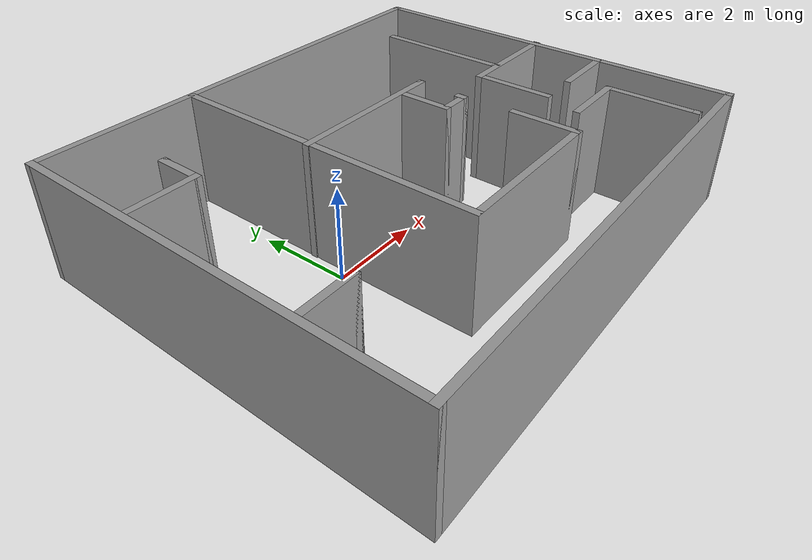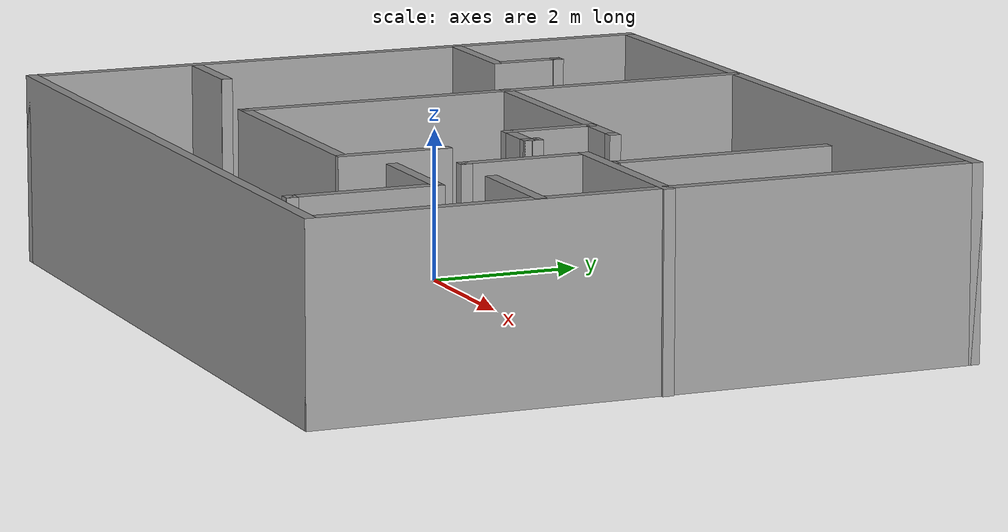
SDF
<?xml version='1.0'?>
<sdf version='1.6'>
  <model name='room'>
    <pose frame=''>1.92405 -0.118331 0 0 -0 0</pose>
    <link name='Wall_0'>
      <collision name='Wall_0_Collision'>
        <geometry>
          <box>
            <size>10.25 0.15 2.5</size>
          </box>
        </geometry>
        <pose frame=''>0 0 1.25 0 -0 0</pose>
      </collision>
      <visual name='Wall_0_Visual'>
        <pose frame=''>0 0 1.25 0 -0 0</pose>
        <geometry>
          <box>
            <size>10.25 0.15 2.5</size>
          </box>
        </geometry>
        <material>
          <script>
            <uri>file://media/materials/scripts/gazebo.material</uri>
            <name>Gazebo/Grey</name>
          </script>
          <ambient>1 1 1 1</ambient>
        </material>
        <meta>
          <layer>0</layer>
        </meta>
      </visual>
      <pose frame=''>-0.020113 4.3 0 0 -0 3.14159</pose>
    </link>
    <link name='Wall_1'>
      <collision name='Wall_1_Collision'>
        <geometry>
          <box>
            <size>8.75 0.15 2.5</size>
          </box>
        </geometry>
        <pose frame=''>0 0 1.25 0 -0 0</pose>
      </collision>
      <visual name='Wall_1_Visual'>
        <pose frame=''>0 0 1.25 0 -0 0</pose>
        <geometry>
          <box>
            <size>8.75 0.15 2.5</size>
          </box>
        </geometry>
        <material>
          <script>
            <uri>file://media/materials/scripts/gazebo.material</uri>
            <name>Gazebo/Grey</name>
          </script>
          <ambient>1 1 1 1</ambient>
        </material>
        <meta>
          <layer>0</layer>
        </meta>
      </visual>
      <pose frame=''>-5.07011 0 0 0 -0 -1.5708</pose>
    </link>
    <link name='Wall_10'>
      <collision name='Wall_10_Collision'>
        <geometry>
          <box>
            <size>3.5 0.15 2.5</size>
          </box>
        </geometry>
        <pose frame=''>0 0 1.25 0 -0 0</pose>
      </collision>
      <visual name='Wall_10_Visual'>
        <pose frame=''>0 0 1.25 0 -0 0</pose>
        <geometry>
          <box>
            <size>3.5 0.15 2.5</size>
          </box>
        </geometry>
        <material>
          <script>
            <uri>file://media/materials/scripts/gazebo.material</uri>
            <name>Gazebo/Grey</name>
          </script>
          <ambient>1 1 1 1</ambient>
        </material>
        <meta>
          <layer>0</layer>
        </meta>
      </visual>
      <pose frame=''>0.007067 1.02149 0 0 -0 0</pose>
    </link>
    <link name='Wall_11'>
      <collision name='Wall_11_Collision'>
        <geometry>
          <box>
            <size>0.16 0.15 2.5</size>
          </box>
        </geometry>
        <pose frame=''>0 0 1.25 0 -0 0</pose>
      </collision>
      <visual name='Wall_11_Visual'>
        <pose frame=''>0 0 1.25 0 -0 0</pose>
        <geometry>
          <box>
            <size>0.16 0.15 2.5</size>
          </box>
        </geometry>
        <material>
          <script>
            <uri>file://media/materials/scripts/gazebo.material</uri>
            <name>Gazebo/Grey</name>
          </script>
          <ambient>1 1 1 1</ambient>
        </material>
        <meta>
          <layer>0</layer>
        </meta>
      </visual>
      <pose frame=''>1.68707 1.02149 0 0 -0 0</pose>
    </link>
    <link name='Wall_13'>
      <collision name='Wall_13_Collision'>
        <geometry>
          <box>
            <size>1.25 0.15 2.5</size>
          </box>
        </geometry>
        <pose frame=''>0 0 1.25 0 -0 0</pose>
      </collision>
      <visual name='Wall_13_Visual'>
        <pose frame=''>0 0 1.25 0 -0 0</pose>
        <geometry>
          <box>
            <size>1.25 0.15 2.5</size>
          </box>
        </geometry>
        <material>
          <script>
            <uri>file://media/materials/scripts/gazebo.material</uri>
            <name>Gazebo/Grey</name>
          </script>
          <ambient>1 1 1 1</ambient>
        </material>
        <meta>
          <layer>0</layer>
        </meta>
      </visual>
      <pose frame=''>1.02729 0.451374 0 0 -0 -1.5708</pose>
    </link>
    <link name='Wall_14'>
      <collision name='Wall_14_Collision'>
        <geometry>
          <box>
            <size>0.75 0.15 2.5</size>
          </box>
        </geometry>
        <pose frame=''>0 0 1.25 0 -0 0</pose>
      </collision>
      <visual name='Wall_14_Visual'>
        <pose frame=''>0 0 1.25 0 -0 0</pose>
        <geometry>
          <box>
            <size>0.75 0.15 2.5</size>
          </box>
        </geometry>
        <material>
          <script>
            <uri>file://media/materials/scripts/gazebo.material</uri>
            <name>Gazebo/Grey</name>
          </script>
          <ambient>1 1 1 1</ambient>
        </material>
        <meta>
          <layer>0</layer>
        </meta>
      </visual>
      <pose frame=''>1.32729 -0.098626 0 0 -0 0</pose>
    </link>
    <link name='Wall_15'>
      <collision name='Wall_15_Collision'>
        <geometry>
          <box>
            <size>0.25 0.15 2.5</size>
          </box>
        </geometry>
        <pose frame=''>0 0 1.25 0 -0 0</pose>
      </collision>
      <visual name='Wall_15_Visual'>
        <pose frame=''>0 0 1.25 0 -0 0</pose>
        <geometry>
          <box>
            <size>0.25 0.15 2.5</size>
          </box>
        </geometry>
        <material>
          <script>
            <uri>file://media/materials/scripts/gazebo.material</uri>
            <name>Gazebo/Grey</name>
          </script>
          <ambient>1 1 1 1</ambient>
        </material>
        <meta>
          <layer>0</layer>
        </meta>
      </visual>
      <pose frame=''>1.62729 -0.048626 0 0 -0 1.5708</pose>
    </link>
    <link name='Wall_16'>
      <collision name='Wall_16_Collision'>
        <geometry>
          <box>
            <size>0.16 0.15 2.5</size>
          </box>
        </geometry>
        <pose frame=''>0 0 1.25 0 -0 0</pose>
      </collision>
      <visual name='Wall_16_Visual'>
        <pose frame=''>0 0 1.25 0 -0 0</pose>
        <geometry>
          <box>
            <size>0.16 0.15 2.5</size>
          </box>
        </geometry>
        <material>
          <script>
            <uri>file://media/materials/scripts/gazebo.material</uri>
            <name>Gazebo/Grey</name>
          </script>
          <ambient>1 1 1 1</ambient>
        </material>
        <meta>
          <layer>0</layer>
        </meta>
      </visual>
      <pose frame=''>1.63229 0.001374 0 0 -0 0</pose>
    </link>
    <link name='Wall_18'>
      <collision name='Wall_18_Collision'>
        <geometry>
          <box>
            <size>3 0.15 2.5</size>
          </box>
        </geometry>
        <pose frame=''>0 0 1.25 0 -0 0</pose>
      </collision>
      <visual name='Wall_18_Visual'>
        <pose frame=''>0 0 1.25 0 -0 0</pose>
        <geometry>
          <box>
            <size>3 0.15 2.5</size>
          </box>
        </geometry>
        <material>
          <script>
            <uri>file://media/materials/scripts/gazebo.material</uri>
            <name>Gazebo/Grey</name>
          </script>
          <ambient>1 1 1 1</ambient>
        </material>
        <meta>
          <layer>0</layer>
        </meta>
      </visual>
      <pose frame=''>3.38057 1.66819 0 0 -0 -1.5708</pose>
    </link>
    <link name='Wall_19'>
      <collision name='Wall_19_Collision'>
        <geometry>
          <box>
            <size>0.16 0.15 2.5</size>
          </box>
        </geometry>
        <pose frame=''>0 0 1.25 0 -0 0</pose>
      </collision>
      <visual name='Wall_19_Visual'>
        <pose frame=''>0 0 1.25 0 -0 0</pose>
        <geometry>
          <box>
            <size>0.16 0.15 2.5</size>
          </box>
        </geometry>
        <material>
          <script>
            <uri>file://media/materials/scripts/gazebo.material</uri>
            <name>Gazebo/Grey</name>
          </script>
          <ambient>1 1 1 1</ambient>
        </material>
        <meta>
          <layer>0</layer>
        </meta>
      </visual>
      <pose frame=''>3.38557 0.243186 0 0 -0 0</pose>
    </link>
    <link name='Wall_2'>
      <collision name='Wall_2_Collision'>
        <geometry>
          <box>
            <size>10.25 0.15 2.5</size>
          </box>
        </geometry>
        <pose frame=''>0 0 1.25 0 -0 0</pose>
      </collision>
      <visual name='Wall_2_Visual'>
        <pose frame=''>0 0 1.25 0 -0 0</pose>
        <geometry>
          <box>
            <size>10.25 0.15 2.5</size>
          </box>
        </geometry>
        <material>
          <script>
            <uri>file://media/materials/scripts/gazebo.material</uri>
            <name>Gazebo/Grey</name>
          </script>
          <ambient>1 1 1 1</ambient>
        </material>
        <meta>
          <layer>0</layer>
        </meta>
      </visual>
      <pose frame=''>-0.020113 -4.3 0 0 -0 0</pose>
    </link>
    <link name='Wall_21'>
      <collision name='Wall_21_Collision'>
        <geometry>
          <box>
            <size>2.5 0.15 2.5</size>
          </box>
        </geometry>
        <pose frame=''>0 0 1.25 0 -0 0</pose>
      </collision>
      <visual name='Wall_21_Visual'>
        <pose frame=''>0 0 1.25 0 -0 0</pose>
        <geometry>
          <box>
            <size>2.5 0.15 2.5</size>
          </box>
        </geometry>
        <material>
          <script>
            <uri>file://media/materials/scripts/gazebo.material</uri>
            <name>Gazebo/Grey</name>
          </script>
          <ambient>1 1 1 1</ambient>
        </material>
        <meta>
          <layer>0</layer>
        </meta>
      </visual>
      <pose frame=''>3.89511 0.196831 0 0 -0 3.14159</pose>
    </link>
    <link name='Wall_22'>
      <collision name='Wall_22_Collision'>
        <geometry>
          <box>
            <size>1.75 0.15 2.5</size>
          </box>
        </geometry>
        <pose frame=''>0 0 1.25 0 -0 0</pose>
      </collision>
      <visual name='Wall_22_Visual'>
        <pose frame=''>0 0 1.25 0 -0 0</pose>
        <geometry>
          <box>
            <size>1.75 0.15 2.5</size>
          </box>
        </geometry>
        <material>
          <script>
            <uri>file://media/materials/scripts/gazebo.material</uri>
            <name>Gazebo/Grey</name>
          </script>
          <ambient>1 1 1 1</ambient>
        </material>
        <meta>
          <layer>0</layer>
        </meta>
      </visual>
      <pose frame=''>2.72011 -0.603169 0 0 -0 -1.5708</pose>
    </link>
    <link name='Wall_23'>
      <collision name='Wall_23_Collision'>
        <geometry>
          <box>
            <size>0.16 0.15 2.5</size>
          </box>
        </geometry>
        <pose frame=''>0 0 1.25 0 -0 0</pose>
      </collision>
      <visual name='Wall_23_Visual'>
        <pose frame=''>0 0 1.25 0 -0 0</pose>
        <geometry>
          <box>
            <size>0.16 0.15 2.5</size>
          </box>
        </geometry>
        <material>
          <script>
            <uri>file://media/materials/scripts/gazebo.material</uri>
            <name>Gazebo/Grey</name>
          </script>
          <ambient>1 1 1 1</ambient>
        </material>
        <meta>
          <layer>0</layer>
        </meta>
      </visual>
      <pose frame=''>2.72511 -1.40317 0 0 -0 0</pose>
    </link>
    <link name='Wall_25'>
      <collision name='Wall_25_Collision'>
        <geometry>
          <box>
            <size>1.5 0.15 2.5</size>
          </box>
        </geometry>
        <pose frame=''>0 0 1.25 0 -0 0</pose>
      </collision>
      <visual name='Wall_25_Visual'>
        <pose frame=''>0 0 1.25 0 -0 0</pose>
        <geometry>
          <box>
            <size>1.5 0.15 2.5</size>
          </box>
        </geometry>
        <material>
          <script>
            <uri>file://media/materials/scripts/gazebo.material</uri>
            <name>Gazebo/Grey</name>
          </script>
          <ambient>1 1 1 1</ambient>
        </material>
        <meta>
          <layer>0</layer>
        </meta>
      </visual>
      <pose frame=''>4.31705 -1.41225 0 0 -0 0</pose>
    </link>
    <link name='Wall_27'>
      <collision name='Wall_27_Collision'>
        <geometry>
          <box>
            <size>1.5 0.15 2.5</size>
          </box>
        </geometry>
        <pose frame=''>0 0 1.25 0 -0 0</pose>
      </collision>
      <visual name='Wall_27_Visual'>
        <pose frame=''>0 0 1.25 0 -0 0</pose>
        <geometry>
          <box>
            <size>1.5 0.15 2.5</size>
          </box>
        </geometry>
        <material>
          <script>
            <uri>file://media/materials/scripts/gazebo.material</uri>
            <name>Gazebo/Grey</name>
          </script>
          <ambient>1 1 1 1</ambient>
        </material>
        <meta>
          <layer>0</layer>
        </meta>
      </visual>
      <pose frame=''>-4.29156 1.72546 0 0 -0 0</pose>
    </link>
    <link name='Wall_28'>
      <collision name='Wall_28_Collision'>
        <geometry>
          <box>
            <size>1 0.15 2.5</size>
          </box>
        </geometry>
        <pose frame=''>0 0 1.25 0 -0 0</pose>
      </collision>
      <visual name='Wall_28_Visual'>
        <pose frame=''>0 0 1.25 0 -0 0</pose>
        <geometry>
          <box>
            <size>1 0.15 2.5</size>
          </box>
        </geometry>
        <material>
          <script>
            <uri>file://media/materials/scripts/gazebo.material</uri>
            <name>Gazebo/Grey</name>
          </script>
          <ambient>1 1 1 1</ambient>
        </material>
        <meta>
          <layer>0</layer>
        </meta>
      </visual>
      <pose frame=''>-3.61656 2.15046 0 0 -0 1.5708</pose>
    </link>
    <link name='Wall_29'>
      <collision name='Wall_29_Collision'>
        <geometry>
          <box>
            <size>0.16 0.15 2.5</size>
          </box>
        </geometry>
        <pose frame=''>0 0 1.25 0 -0 0</pose>
      </collision>
      <visual name='Wall_29_Visual'>
        <pose frame=''>0 0 1.25 0 -0 0</pose>
        <geometry>
          <box>
            <size>0.16 0.15 2.5</size>
          </box>
        </geometry>
        <material>
          <script>
            <uri>file://media/materials/scripts/gazebo.material</uri>
            <name>Gazebo/Grey</name>
          </script>
          <ambient>1 1 1 1</ambient>
        </material>
        <meta>
          <layer>0</layer>
        </meta>
      </visual>
      <pose frame=''>-3.61156 2.57546 0 0 -0 0</pose>
    </link>
    <link name='Wall_3'>
      <collision name='Wall_3_Collision'>
        <geometry>
          <box>
            <size>8.75 0.15 2.5</size>
          </box>
        </geometry>
        <pose frame=''>0 0 1.25 0 -0 0</pose>
      </collision>
      <visual name='Wall_3_Visual'>
        <pose frame=''>0 0 1.25 0 -0 0</pose>
        <geometry>
          <box>
            <size>8.75 0.15 2.5</size>
          </box>
        </geometry>
        <material>
          <script>
            <uri>file://media/materials/scripts/gazebo.material</uri>
            <name>Gazebo/Grey</name>
          </script>
          <ambient>1 1 1 1</ambient>
        </material>
        <meta>
          <layer>0</layer>
        </meta>
      </visual>
      <pose frame=''>5.02989 0 0 0 -0 1.5708</pose>
    </link>
    <link name='Wall_31'>
      <collision name='Wall_31_Collision'>
        <geometry>
          <box>
            <size>1.25 0.15 2.5</size>
          </box>
        </geometry>
        <pose frame=''>0 0 1.25 0 -0 0</pose>
      </collision>
      <visual name='Wall_31_Visual'>
        <pose frame=''>0 0 1.25 0 -0 0</pose>
        <geometry>
          <box>
            <size>1.25 0.15 2.5</size>
          </box>
        </geometry>
        <material>
          <script>
            <uri>file://media/materials/scripts/gazebo.material</uri>
            <name>Gazebo/Grey</name>
          </script>
          <ambient>1 1 1 1</ambient>
        </material>
        <meta>
          <layer>0</layer>
        </meta>
      </visual>
      <pose frame=''>-4.4769 -2.03578 0 0 -0 0</pose>
    </link>
    <link name='Wall_32'>
      <collision name='Wall_32_Collision'>
        <geometry>
          <box>
            <size>0.16 0.15 2.5</size>
          </box>
        </geometry>
        <pose frame=''>0 0 1.25 0 -0 0</pose>
      </collision>
      <visual name='Wall_32_Visual'>
        <pose frame=''>0 0 1.25 0 -0 0</pose>
        <geometry>
          <box>
            <size>0.16 0.15 2.5</size>
          </box>
        </geometry>
        <material>
          <script>
            <uri>file://media/materials/scripts/gazebo.material</uri>
            <name>Gazebo/Grey</name>
          </script>
          <ambient>1 1 1 1</ambient>
        </material>
        <meta>
          <layer>0</layer>
        </meta>
      </visual>
      <pose frame=''>-3.9219 -2.03578 0 0 -0 0</pose>
    </link>
    <link name='Wall_34'>
      <collision name='Wall_34_Collision'>
        <geometry>
          <box>
            <size>1.5 0.15 2.5</size>
          </box>
        </geometry>
        <pose frame=''>0 0 1.25 0 -0 0</pose>
      </collision>
      <visual name='Wall_34_Visual'>
        <pose frame=''>0 0 1.25 0 -0 0</pose>
        <geometry>
          <box>
            <size>1.5 0.15 2.5</size>
          </box>
        </geometry>
        <material>
          <script>
            <uri>file://media/materials/scripts/gazebo.material</uri>
            <name>Gazebo/Grey</name>
          </script>
          <ambient>1 1 1 1</ambient>
        </material>
        <meta>
          <layer>0</layer>
        </meta>
      </visual>
      <pose frame=''>3.15046 -2.2168 0 0 -0 0</pose>
    </link>
    <link name='Wall_35'>
      <collision name='Wall_35_Collision'>
        <geometry>
          <box>
            <size>2 0.15 2.5</size>
          </box>
        </geometry>
        <pose frame=''>0 0 1.25 0 -0 0</pose>
      </collision>
      <visual name='Wall_35_Visual'>
        <pose frame=''>0 0 1.25 0 -0 0</pose>
        <geometry>
          <box>
            <size>2 0.15 2.5</size>
          </box>
        </geometry>
        <material>
          <script>
            <uri>file://media/materials/scripts/gazebo.material</uri>
            <name>Gazebo/Grey</name>
          </script>
          <ambient>1 1 1 1</ambient>
        </material>
        <meta>
          <layer>0</layer>
        </meta>
      </visual>
      <pose frame=''>3.82546 -3.1418 0 0 -0 -1.5708</pose>
    </link>
    <link name='Wall_36'>
      <collision name='Wall_36_Collision'>
        <geometry>
          <box>
            <size>0.16 0.15 2.5</size>
          </box>
        </geometry>
        <pose frame=''>0 0 1.25 0 -0 0</pose>
      </collision>
      <visual name='Wall_36_Visual'>
        <pose frame=''>0 0 1.25 0 -0 0</pose>
        <geometry>
          <box>
            <size>0.16 0.15 2.5</size>
          </box>
        </geometry>
        <material>
          <script>
            <uri>file://media/materials/scripts/gazebo.material</uri>
            <name>Gazebo/Grey</name>
          </script>
          <ambient>1 1 1 1</ambient>
        </material>
        <meta>
          <layer>0</layer>
        </meta>
      </visual>
      <pose frame=''>3.83046 -4.0668 0 0 -0 0</pose>
    </link>
    <link name='Wall_4'>
      <collision name='Wall_4_Collision'>
        <geometry>
          <box>
            <size>0.15 0.15 2.5</size>
          </box>
        </geometry>
        <pose frame=''>0 0 1.25 0 -0 0</pose>
      </collision>
      <visual name='Wall_4_Visual'>
        <pose frame=''>0 0 1.25 0 -0 0</pose>
        <geometry>
          <box>
            <size>0.15 0.15 2.5</size>
          </box>
        </geometry>
        <material>
          <script>
            <uri>file://media/materials/scripts/gazebo.material</uri>
            <name>Gazebo/Grey</name>
          </script>
          <ambient>1 1 1 1</ambient>
        </material>
        <meta>
          <layer>0</layer>
        </meta>
      </visual>
      <pose frame=''>5.02989 4.3 0 0 -0 0</pose>
    </link>
    <link name='Wall_6'>
      <collision name='Wall_6_Collision'>
        <geometry>
          <box>
            <size>7 0.15 2.5</size>
          </box>
        </geometry>
        <pose frame=''>0 0 1.25 0 -0 0</pose>
      </collision>
      <visual name='Wall_6_Visual'>
        <pose frame=''>0 0 1.25 0 -0 0</pose>
        <geometry>
          <box>
            <size>7 0.15 2.5</size>
          </box>
        </geometry>
        <material>
          <script>
            <uri>file://media/materials/scripts/gazebo.material</uri>
            <name>Gazebo/Grey</name>
          </script>
          <ambient>1 1 1 1</ambient>
        </material>
        <meta>
          <layer>0</layer>
        </meta>
      </visual>
      <pose frame=''>-1.64782 0.834773 0 0 -0 -1.5708</pose>
    </link>
    <link name='Wall_7'>
      <collision name='Wall_7_Collision'>
        <geometry>
          <box>
            <size>3.5 0.15 2.5</size>
          </box>
        </geometry>
        <pose frame=''>0 0 1.25 0 -0 0</pose>
      </collision>
      <visual name='Wall_7_Visual'>
        <pose frame=''>0 0 1.25 0 -0 0</pose>
        <geometry>
          <box>
            <size>3.5 0.15 2.5</size>
          </box>
        </geometry>
        <material>
          <script>
            <uri>file://media/materials/scripts/gazebo.material</uri>
            <name>Gazebo/Grey</name>
          </script>
          <ambient>1 1 1 1</ambient>
        </material>
        <meta>
          <layer>0</layer>
        </meta>
      </visual>
      <pose frame=''>0.027181 -2.59023 0 0 -0 0</pose>
    </link>
    <link name='Wall_8'>
      <collision name='Wall_8_Collision'>
        <geometry>
          <box>
            <size>1.5 0.15 2.5</size>
          </box>
        </geometry>
        <pose frame=''>0 0 1.25 0 -0 0</pose>
      </collision>
      <visual name='Wall_8_Visual'>
        <pose frame=''>0 0 1.25 0 -0 0</pose>
        <geometry>
          <box>
            <size>1.5 0.15 2.5</size>
          </box>
        </geometry>
        <material>
          <script>
            <uri>file://media/materials/scripts/gazebo.material</uri>
            <name>Gazebo/Grey</name>
          </script>
          <ambient>1 1 1 1</ambient>
        </material>
        <meta>
          <layer>0</layer>
        </meta>
      </visual>
      <pose frame=''>1.70218 -1.91523 0 0 -0 1.5708</pose>
    </link>
    <static>1</static>
  </model>
</sdf>
